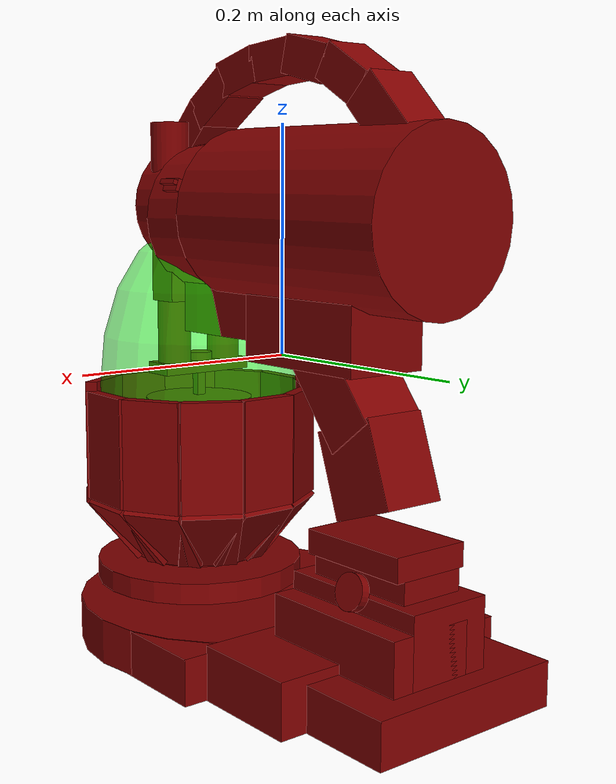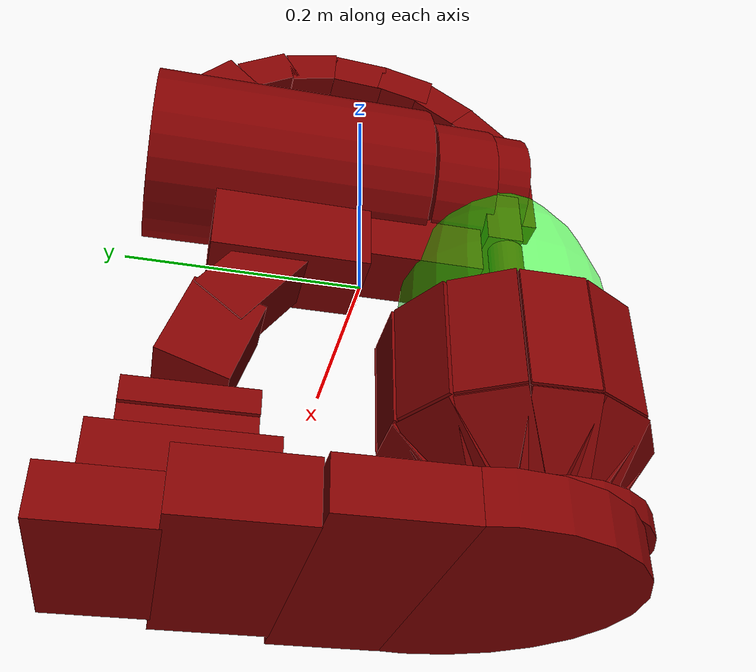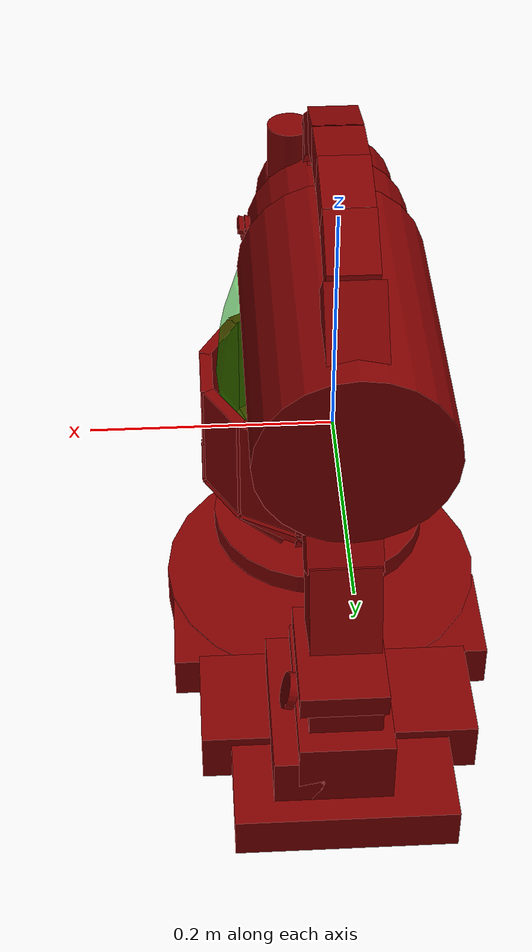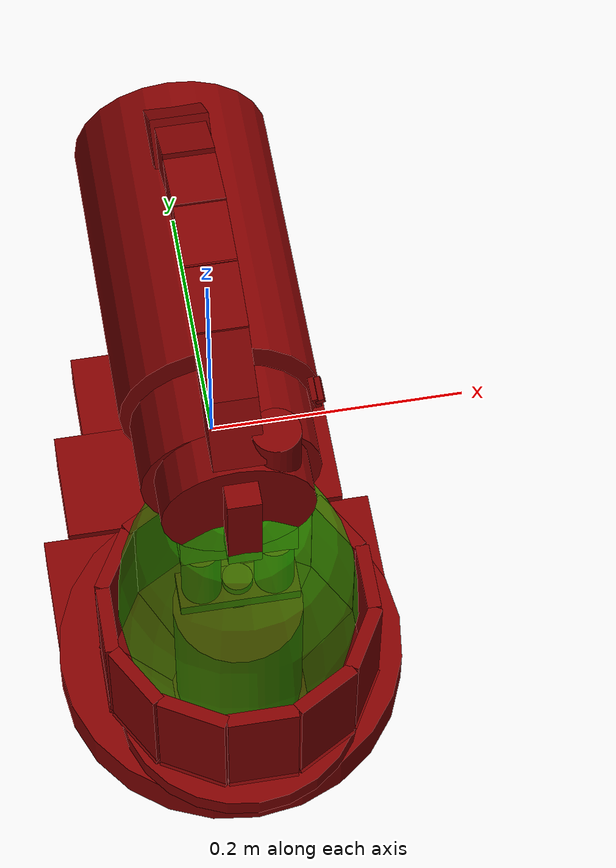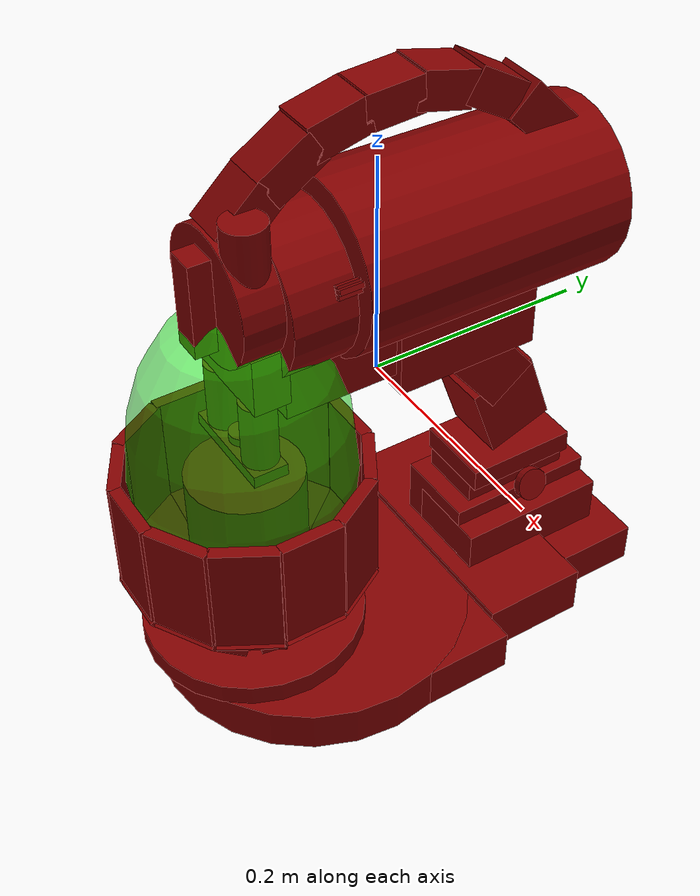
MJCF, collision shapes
<?xml version='1.0' encoding='UTF-8'?>
<mujoco model="model">
  <option timestep="0.002" gravity="0.0 0.0 -9.81"/>
  <compiler angle="radian"/>
  <asset>
    <mesh file="visuals/blender.obj" name="blender_vis"/>
    <mesh file="visuals/bowl.obj" name="bowl_vis"/>
    <mesh file="visuals/button_head_lock.obj" name="button_head_lock_vis"/>
    <mesh file="visuals/head.obj" name="head_vis"/>
    <mesh file="visuals/knob_speed.obj" name="knob_speed_vis"/>
    <mesh file="visuals/Body001.obj" name="Body001_vis"/>
    <texture file="visuals/T_BC001.png" name="Body001_material" type="2d"/>
    <material name="Body001_material" rgba="1 1 1 1.0" texture="Body001_material" shininess="0.5" specular="0.1"/>
    <texture file="visuals/T_BC001.png" name="bowl_material" type="2d"/>
    <material name="bowl_material" rgba="1 1 1 1.0" texture="bowl_material" shininess="0.5" specular="0.3103448502657381"/>
    <texture file="visuals/T_BC001.png" name="button_head_lock_material" type="2d"/>
    <material name="button_head_lock_material" rgba="1 1 1 1.0" texture="button_head_lock_material" shininess="0.5" specular="0.3103448502657381"/>
    <texture file="visuals/T_BC001.png" name="head_material" type="2d"/>
    <material name="head_material" rgba="1 1 1 1.0" texture="head_material" shininess="0.5" specular="0.3103448502657381"/>
    <texture file="visuals/T_BC001.png" name="blender_material" type="2d"/>
    <material name="blender_material" rgba="1 1 1 1.0" texture="blender_material" shininess="0.5" specular="1"/>
    <texture file="visuals/T_BC001.png" name="knob_speed_material" type="2d"/>
    <material name="knob_speed_material" rgba="1 1 1 1.0" texture="knob_speed_material" shininess="0.5" specular="0.3103448502657381"/>
  </asset>
  <default>
    <default class="visual">
      <geom conaffinity="0" contype="0" group="1" type="mesh"/>
    </default>
    <default class="collision">
      <geom group="0" rgba="0.5 0 0 0.5"/>
    </default>
    <default class="spawn">
      <geom group="0" rgba="1 1 1 0.5" contype="0" conaffinity="0"/>
      <site group="0" rgba="1 1 1 0.5"/>
    </default>
    <default class="region">
      <geom group="1" conaffinity="0" contype="0" rgba="0 1 0 0"/>
    </default>
  </default>
  <worldbody>
    <body>
      <body name="object">
        <geom mesh="Body001_vis" type="mesh" solimp="0.998 0.998 0.001" solref="0.001 1" friction="0.95 0.3 0.1" class="visual" material="Body001_material"/>
        <geom type="cylinder" pos="0.00000009 -0.12882403 -0.22015092" size="0.0993005633354187 0.009739317931234837" quat="0.7071067094802856 0.0 0.0 -0.7071068286895752" class="collision"/>
        <geom type="cylinder" pos="0.00159724 -0.07067493 -0.25092971" size="0.14353418350219727 0.01999838836491108" quat="0.7071067094802856 0.0 0.0 -0.7071068286895752" class="collision"/>
        <geom type="box" pos="0.00000009 0.00030997 -0.25160977" size="0.13999146223068237 0.048502832651138306 0.02011392079293728" quat="1.0 0.0 0.0 0.0" class="collision"/>
        <geom type="box" pos="0.00000010 0.09677801 -0.24847236" size="0.11802537739276886 0.04850175604224205 0.023700179532170296" quat="1.0 0.0 0.0 0.0" class="collision"/>
        <geom type="box" pos="0.00000011 0.18565848 -0.25268883" size="0.09285631030797958 0.0422094464302063 0.019484087824821472" quat="1.0 0.0 0.0 0.0" class="collision"/>
        <geom type="box" pos="0.00000011 0.13539287 -0.20324036" size="0.039346326142549515 0.07086953520774841 0.03078654780983925" quat="1.0 0.0 0.0 0.0" class="collision"/>
        <geom type="box" pos="0.00000012 0.13413256 -0.15280017" size="0.03035908378660679 0.052251774817705154 0.01994694210588932" quat="1.0 0.0 0.0 0.0" class="collision"/>
        <geom type="box" pos="0.02040901 0.13539287 -0.21107666" size="0.039346855133771896 0.07086953520774841 0.022950489073991776" quat="1.0 0.0 0.0 0.0" class="collision"/>
        <geom type="box" pos="0.00160481 0.13413256 -0.14323695" size="0.03636304289102554 0.05225205048918724 0.010446212254464626" quat="1.0 0.0 0.0 0.0" class="collision"/>
        <body name="bowl">
          <geom mesh="bowl_vis" type="mesh" solimp="0.998 0.998 0.001" solref="0.001 1" friction="0.95 0.3 0.1" class="visual" material="bowl_material"/>
          <geom type="cylinder" pos="0.00000008 -0.12882403 -0.20474991" size="0.05979258567094803 0.0018684215610846877" quat="0.70710688829422 0.0 0.0 0.7071066498756409" class="collision"/>
          <geom type="box" pos="0.00211295 -0.23157239 -0.09288891" size="0.027677712962031364 0.005457268562167883 0.05090999975800514" quat="1.0 0.0 0.0 0.0" class="collision"/>
          <geom type="box" pos="0.00211295 -0.21016169 -0.17286333" size="0.005457259714603424 0.027677705511450768 0.037360746413469315" quat="0.6654353141784668 0.23915646970272064 -0.23915639519691467 0.6654353737831116" class="collision"/>
          <geom type="box" pos="-0.04954430 -0.21886313 -0.09288891" size="0.005457259714603424 0.027677711099386215 0.05090999975800514" quat="0.866025447845459 0.0 0.0 0.4999999701976776" class="collision"/>
          <geom type="box" pos="-0.03883896 -0.20032096 -0.17286333" size="0.005457259714603424 0.027677707374095917 0.037360746413469315" quat="0.8149885535240173 0.16910913586616516 -0.29290568828582764 0.4705337584018707" class="collision"/>
          <geom type="box" pos="-0.08792619 -0.18202806 -0.09288891" size="0.005457259714603424 0.027677709236741066 0.05091000348329544" quat="0.9659258127212524 0.0 0.0 0.2588190734386444" class="collision"/>
          <geom type="box" pos="-0.06938398 -0.17132267 -0.17286333" size="0.005457259714603424 0.027677705511450768 0.037360746413469315" quat="0.9090015888214111 0.08753731846809387 -0.3266938328742981 0.24356621503829956" class="collision"/>
          <geom type="box" pos="-0.10274828 -0.13093692 -0.09288891" size="0.005457266233861446 0.027677709236741066 0.05090999975800514" quat="1.0 0.0 0.0 0.0" class="collision"/>
          <geom type="box" pos="-0.08133759 -0.13093689 -0.17286333" size="0.005457259714603424 0.027677705511450768 0.037360746413469315" quat="0.9410676956176758 -1.4864680153436893e-08 -0.3382182717323303 -5.418909765353419e-08" class="collision"/>
          <geom type="box" pos="-0.09003907 -0.07927966 -0.09288891" size="0.005457259714603424 0.027677711099386215 0.05090999975800514" quat="0.9659258127212524 0.0 0.0 -0.2588191032409668" class="collision"/>
          <geom type="box" pos="-0.07149684 -0.08998501 -0.17286333" size="0.005457259714603424 0.027677705511450768 0.037360746413469315" quat="0.9090015888214111 -0.08753730356693268 -0.3266937732696533 -0.24356628954410553" class="collision"/>
          <geom type="box" pos="-0.05320391 -0.04089779 -0.09288891" size="0.005457259248942137 0.027677711099386215 0.05090999975800514" quat="0.8660253882408142 0.0 0.0 -0.5" class="collision"/>
          <geom type="box" pos="-0.04249857 -0.05943999 -0.17286333" size="0.005457259714603424 0.027677705511450768 0.037360746413469315" quat="0.8149885535240173 -0.16910910606384277 -0.2929055988788605 -0.4705338180065155" class="collision"/>
          <geom type="box" pos="-0.00211281 -0.02607566 -0.09288891" size="0.027677712962031364 0.005457268562167883 0.05090999975800514" quat="1.0 0.0 0.0 0.0" class="collision"/>
          <geom type="box" pos="-0.00211278 -0.04748636 -0.17286333" size="0.005457259714603424 0.027677705511450768 0.037360746413469315" quat="0.6654351949691772 -0.23915646970272064 -0.23915639519691467 -0.6654354929924011" class="collision"/>
          <geom type="box" pos="0.04954447 -0.03878492 -0.09288891" size="0.005457260180264711 0.027677711099386215 0.05091000348329544" quat="0.4999999701976776 0.0 0.0 -0.866025447845459" class="collision"/>
          <geom type="box" pos="0.03883914 -0.05732712 -0.17286333" size="0.005457259714603424 0.027677707374095917 0.037360746413469315" quat="0.4705338478088379 -0.2929055690765381 -0.16910910606384277 -0.8149885535240173" class="collision"/>
          <geom type="box" pos="0.08792634 -0.07562006 -0.09288891" size="0.005457259714603424 0.027677711099386215 0.05091000348329544" quat="0.25881895422935486 0.0 0.0 -0.9659258723258972" class="collision"/>
          <geom type="box" pos="0.06938414 -0.08632541 -0.17286333" size="0.005457259714603424 0.027677707374095917 0.037360746413469315" quat="0.24356628954410553 -0.32669374346733093 -0.08753740042448044 -0.9090015888214111" class="collision"/>
          <geom type="box" pos="0.10274845 -0.12671119 -0.09288891" size="0.0054572708904743195 0.027677712962031364 0.05090999975800514" quat="1.0 0.0 0.0 0.0" class="collision"/>
          <geom type="box" pos="0.08133775 -0.12671116 -0.17286333" size="0.005457259714603424 0.027677705511450768 0.037360746413469315" quat="5.555726190209498e-08 0.3382182717323303 1.7568849486337967e-08 0.9410676956176758" class="collision"/>
          <geom type="box" pos="0.09003922 -0.17836839 -0.09288891" size="0.005457260180264711 0.027677709236741066 0.05090999975800514" quat="0.2588190734386444 0.0 0.0 0.9659258127212524" class="collision"/>
          <geom type="box" pos="0.07149699 -0.16766307 -0.17286333" size="0.005457259714603424 0.027677707374095917 0.037360746413469315" quat="0.24356625974178314 0.32669374346733093 -0.08753732591867447 0.9090015888214111" class="collision"/>
          <geom type="box" pos="0.05320406 -0.21675026 -0.09288891" size="0.005457259248942137 0.027677711099386215 0.05090999975800514" quat="0.4999999701976776 0.0 0.0 0.866025447845459" class="collision"/>
          <geom type="box" pos="0.04249871 -0.19820809 -0.17286333" size="0.005457259714603424 0.027677707374095917 0.037360746413469315" quat="0.4705338776111603 0.29290571808815 -0.16910916566848755 0.8149884343147278" class="collision"/>
          <geom name="reg_bowl" type="ellipsoid" pos="0.00000008 -0.12882403 -0.04245415" size="0.09392112493515015 0.0957108736038208 0.15942323207855225" rgba="0 1 0 0.5" class="region"/>
        </body>
        <body name="button_head_lock">
          <joint axis="-0.972398042678833 0.0 -0.23332831263542175" pos="0.04066916 0.14136949 -0.17045003" limited="true" name="button_head_lock_joint" range="0.0 0.003" type="slide" damping="1" frictionloss="1" armature=".01" stiffness="0.2" springref="-0.5"/>
          <geom mesh="button_head_lock_vis" type="mesh" solimp="0.998 0.998 0.001" solref="0.001 1" friction="0.95 0.3 0.1" class="visual" material="button_head_lock_material"/>
          <geom class="collision" type="cylinder" pos="0.04366603 0.14179471 -0.16997384" size="0.015489477664232254 0.003840031800791621" quat="0.8005008101463318 -1.8275111424159718e-09 0.5993316769599915 2.5640416456695903e-09" name="button_head_lock_main"/>
        </body>
        <body name="head">
          <joint axis="-1.0 0.0 0.0" pos="0.00211298 0.17589164 -0.12895028" limited="true" name="head_joint" range="0.0 1.5707963267948966" type="hinge" damping="1" frictionloss="1" armature=".01" stiffness="0.05"/>
          <geom mesh="head_vis" type="mesh" solimp="0.998 0.998 0.001" solref="0.001 1" friction="0.95 0.3 0.1" class="visual" material="head_material"/>
          <geom type="cylinder" pos="0.00000013 0.06991654 0.12076524" size="0.07553092390298843 0.12249548733234406" quat="0.49696993827819824 -0.5030108094215393 0.5030916333198547 0.4968900978565216" class="collision"/>
          <geom type="cylinder" pos="-0.00118897 -0.08547416 0.11838531" size="0.06744355708360672 0.027656659483909607" quat="0.5000000596046448 -0.5 0.5 0.4999999701976776" class="collision"/>
          <geom type="cylinder" pos="-0.00118897 -0.12493914 0.12926580" size="0.05730089172720909 0.0234974455088377" quat="0.5000001788139343 -0.5000000596046448 0.4999999403953552 0.49999985098838806" class="collision"/>
          <geom type="cylinder" pos="-0.02809165 -0.12714577 0.01132488" size="0.015423283912241459 0.030910924077033997" quat="0.70710688829422 0.0 0.0 0.7071066498756409" class="collision"/>
          <geom type="cylinder" pos="0.02829223 -0.12714577 0.01132488" size="0.015423283912241459 0.030910924077033997" quat="0.70710688829422 0.0 0.0 0.7071066498756409" class="collision"/>
          <geom type="cylinder" pos="-0.00021529 -0.12714577 -0.01802419" size="0.011843170039355755 0.008213881403207779" quat="0.70710688829422 0.0 0.0 0.7071066498756409" class="collision"/>
          <geom type="cylinder" pos="0.02894827 -0.12940249 0.18223879" size="0.01828480139374733 0.022911718115210533" quat="0.7071067094802856 0.0 0.0 -0.7071068286895752" class="collision"/>
          <geom type="box" pos="0.00000014 0.06540740 0.02644565" size="0.03905344754457474 0.06689020246267319 0.028838424012064934" quat="1.0 0.0 0.0 0.0" class="collision"/>
          <geom type="box" pos="0.00000013 -0.04916990 0.03792148" size="0.0319354422390461 0.05469865724444389 0.023583194240927696" quat="1.0 0.0 0.0 0.0" class="collision"/>
          <geom type="box" pos="0.00000013 0.12414976 -0.07770864" size="0.031394146382808685 0.02908330224454403 0.037388209253549576" quat="0.69721919298172 0.11783666908740997 -0.11783668398857117 0.6972190737724304" class="collision"/>
          <geom type="box" pos="0.00000014 -0.12806019 -0.02279133" size="0.046673260629177094 0.015383811667561531 0.005404059775173664" quat="1.0 0.0 0.0 0.0" class="collision"/>
          <geom type="box" pos="-0.00029207 -0.12806019 -0.03908238" size="0.004436506889760494 0.004100239370018244 0.012434493750333786" quat="1.0 0.0 0.0 0.0" class="collision"/>
          <geom type="box" pos="0.00000014 0.09287360 -0.01568130" size="0.04690190404653549 0.030521633103489876 0.02520126849412918" quat="0.6356257796287537 -0.30980589985847473 0.3098057508468628 0.6356261372566223" class="collision"/>
          <geom type="box" pos="0.00000013 -0.12228295 0.06729464" size="0.0446743406355381 0.01603887975215912 0.02593127451837063" quat="1.0 0.0 0.0 0.0" class="collision"/>
          <geom type="box" pos="0.00000016 -0.15705761 0.12916996" size="0.012671181000769138 0.010776338167488575 0.041057318449020386" quat="1.0 0.0 0.0 0.0" class="collision"/>
          <geom type="box" pos="0.00000017 0.13905230 0.20035425" size="0.029344329610466957 0.022228607907891273 0.018353836610913277" quat="0.6513049006462097 -0.27532148361206055 0.27532151341438293 0.6513049006462097" class="collision"/>
          <geom type="box" pos="0.00000017 0.09477189 0.23285562" size="0.025530321523547173 0.019339462742209435 0.015968309715390205" quat="0.6814349293708801 -0.18880237638950348 0.1888023316860199 0.6814351081848145" class="collision"/>
          <geom type="box" pos="0.00000017 0.04937258 0.24867155" size="0.025530319660902023 0.019339462742209435 0.015968309715390205" quat="0.7016568779945374 -0.08762177079916 0.08762177079916 0.7016569375991821" class="collision"/>
          <geom type="box" pos="0.00000017 0.00361517 0.25101089" size="0.025530319660902023 0.019339462742209435 0.015968309715390205" quat="0.7068054676055908 0.020641008391976357 -0.020641004666686058 0.7068054676055908" class="collision"/>
          <geom type="box" pos="0.00000016 -0.04226488 0.24434736" size="0.02553032711148262 0.019339462742209435 0.015968309715390205" quat="0.7023257613182068 0.0820889100432396 -0.0820889100432396 0.7023256421089172" class="collision"/>
          <geom type="box" pos="0.00000016 -0.08169991 0.22435676" size="0.025530319660902023 0.019339462742209435 0.015968309715390205" quat="0.6795504093170166 0.19547683000564575 -0.19547683000564575 0.6795504689216614" class="collision"/>
          <geom type="box" pos="0.00000015 -0.11796698 0.19584557" size="0.025530321523547173 0.019339462742209435 0.015968309715390205" quat="0.6572299599647522 0.26086151599884033 -0.2608613967895508 0.6572300791740417" class="collision"/>
          <body name="blender">
            <joint axis="0.0 0.0 1.0" pos="-0.00024856 -0.12824279 -0.12045943" limited="false" name="blender_joint" range="0 360" type="hinge" damping="1" frictionloss="1" armature=".01" stiffness="0.05"/>
            <geom mesh="blender_vis" type="mesh" solimp="0.998 0.998 0.001" solref="0.001 1" friction="0.95 0.3 0.1" class="visual" material="blender_material"/>
            <geom type="cylinder" pos="-0.00024856 -0.12824279 -0.12081171" size="0.051090408116579056 0.06729777902364731" quat="0.70710688829422 0.0 0.0 0.7071066498756409" class="collision"/>
          </body>
          <body name="knob_speed">
            <joint axis="0.0 -1.0 0.0" pos="-0.00256996 -0.06744314 0.11704668" limited="true" name="knob_speed_joint" range="0.0 0.8377580409572781" type="hinge" damping="0.05" armature="0.001" springref="-100"/>
            <geom mesh="knob_speed_vis" type="mesh" solimp="0.998 0.998 0.001" solref="0.001 1" friction="0.95 0.3 0.1" class="visual" material="knob_speed_material"/>
            <geom type="box" pos="0.06803390 -0.06841345 0.14768006" size="0.01002931222319603 0.0022196490317583084 0.005512468982487917" quat="0.6971321702003479 -0.11835025995969772 -0.11835024505853653 0.6971321105957031" class="collision"/>
            <geom class="collision" type="box" pos="0.07058641 -0.06861638 0.14998001" size="0.010232232511043549 0.00208250992000103 0.003442030167207122" quat="0.5810648798942566 0.4029436707496643 0.4029437005519867 0.5810648798942566" name="knob_speed_main"/>
          </body>
        </body>
        <geom class="region" name="reg_main" type="box" pos="0.00017601000000000422 0.013035394999999991 0.0" size="0.14278689 0.224299655 0.26899566"/>
      </body>
    </body>
  </worldbody>
  <actuator>
    <motor name="button_head_lock_joint_actuator" joint="button_head_lock_joint" gear="0.5"/>
    <motor name="head_joint_actuator" joint="head_joint" gear="50"/>
    <motor name="blender_joint_actuator" joint="blender_joint" gear="15"/>
    <motor name="knob_speed_joint_actuator" joint="knob_speed_joint" gear="5"/>
  </actuator>
</mujoco>
